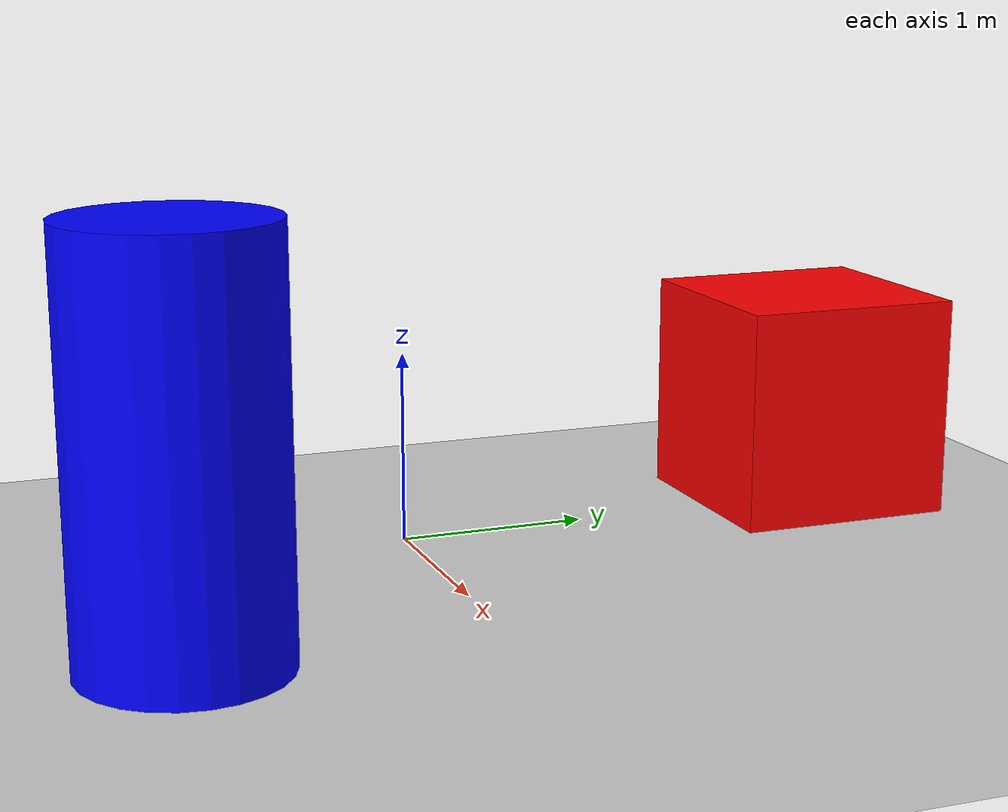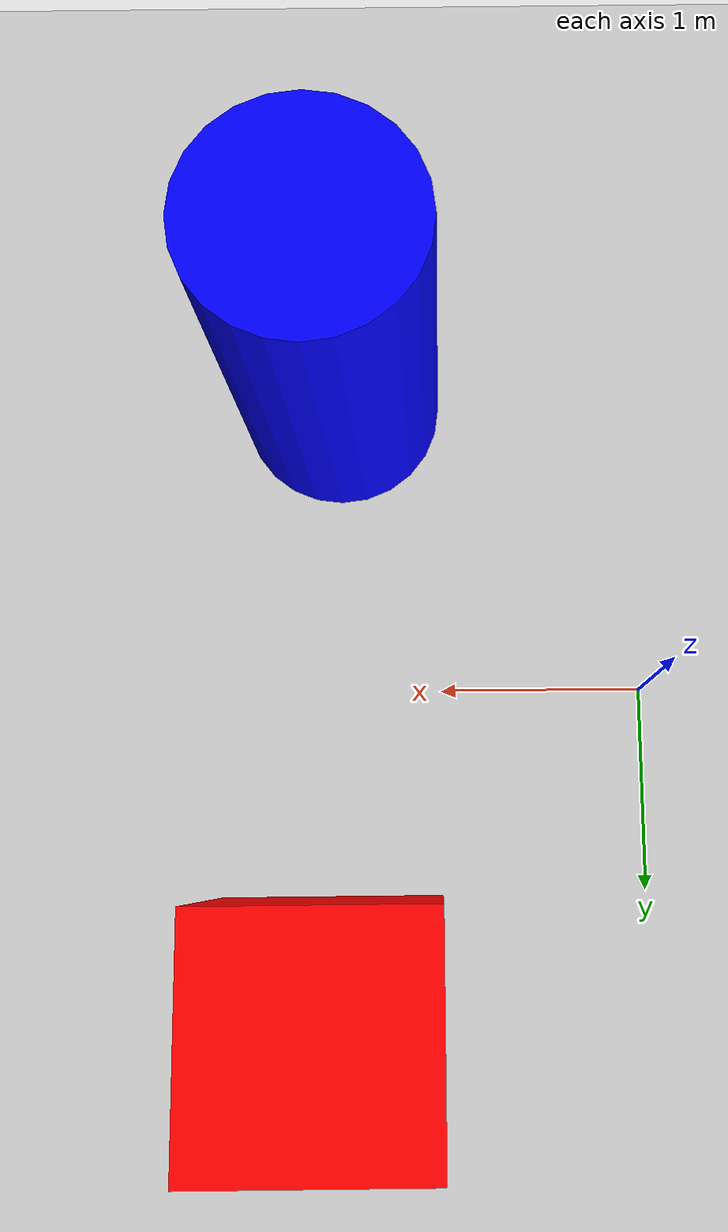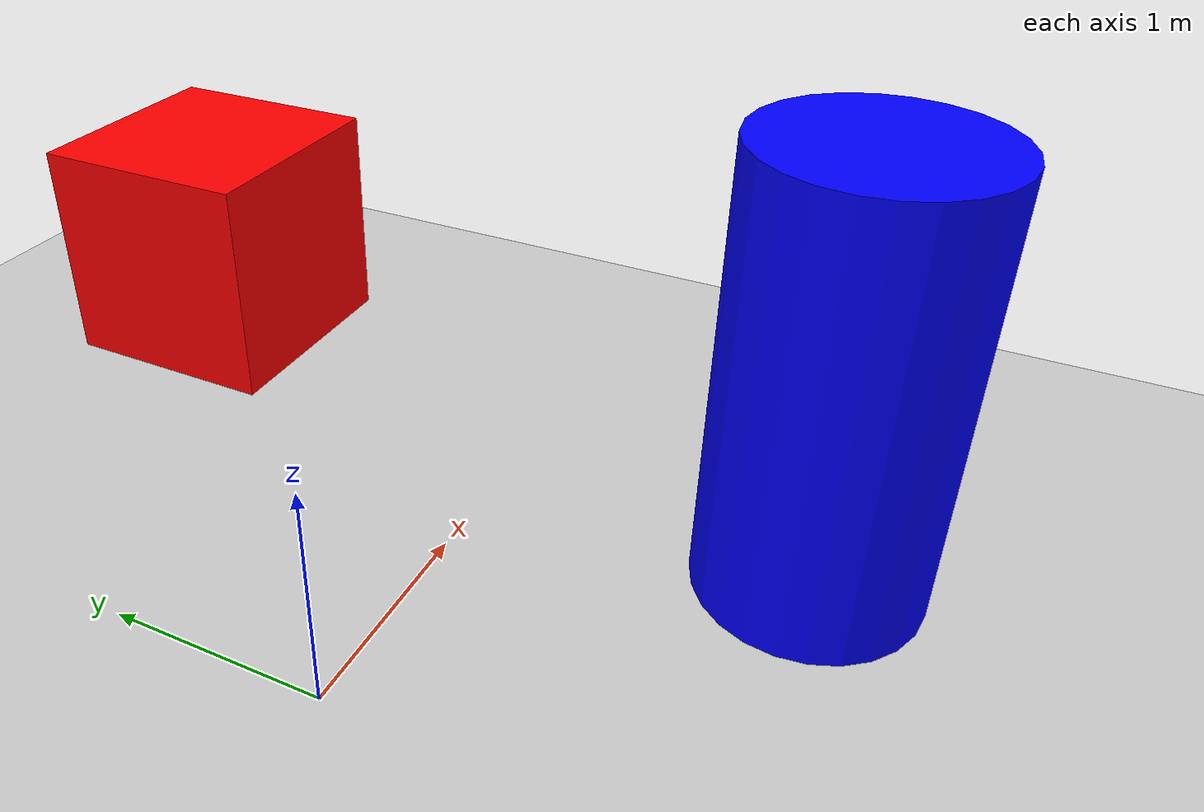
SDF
<?xml version="1.0" ?>
<sdf version="1.5">
  <world name="default">
    <physics type="ode">
      <real_time_update_rate>1000</real_time_update_rate>
      <max_step_size>0.001</max_step_size>
      <gravity>0 0 -9.81</gravity>
    </physics>
    <!-- A global light source -->
    <include>
      <uri>model://sun</uri>
    </include>
    <!-- A ground plane -->
    <include>
      <uri>model://ground_plane</uri>
    </include>

    <!-- Add a box -->
    <model name="box_model">
      <pose>1.5 1.5 1 0 0 0</pose> <!-- X, Y, Z, roll, pitch, yaw -->
      <link name="box_link">
        <collision name="box_collision">
          <geometry>
            <box>
              <size>1 1 1</size> <!-- X, Y, Z dimensions -->
            </box>
          </geometry>
        </collision>
        <visual name="box_visual">
          <geometry>
            <box>
              <size>1 1 1</size>
            </box>
          </geometry>
          <material>
            <ambient>1 0 0 1</ambient> <!-- Red color -->
          </material>
        </visual>
      </link>
    </model>

    <!-- Add a cylinder -->
    <model name="cylinder_model">
      <pose>1.5 -1.5 1 0 0 0</pose> <!-- X, Y, Z, roll, pitch, yaw -->
      <link name="cylinder_link">
        <collision name="cylinder_collision">
          <geometry>
            <cylinder>
              <radius>0.5</radius> <!-- Radius of the cylinder -->
              <length>2</length> <!-- Length of the cylinder -->
            </cylinder>
          </geometry>
        </collision>
        <visual name="cylinder_visual">
          <geometry>
            <cylinder>
              <radius>0.5</radius>
              <length>2</length>
            </cylinder>
          </geometry>
          <material>
            <ambient>0 0 1 1</ambient> <!-- Blue color -->
          </material>
        </visual>
      </link>
    </model>

  </world>
</sdf>
